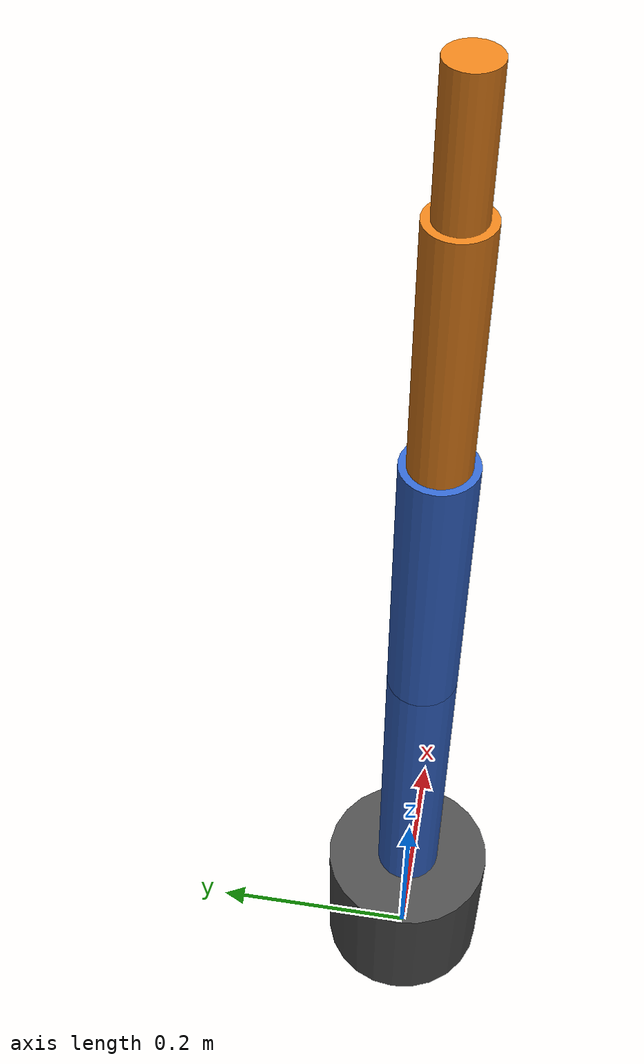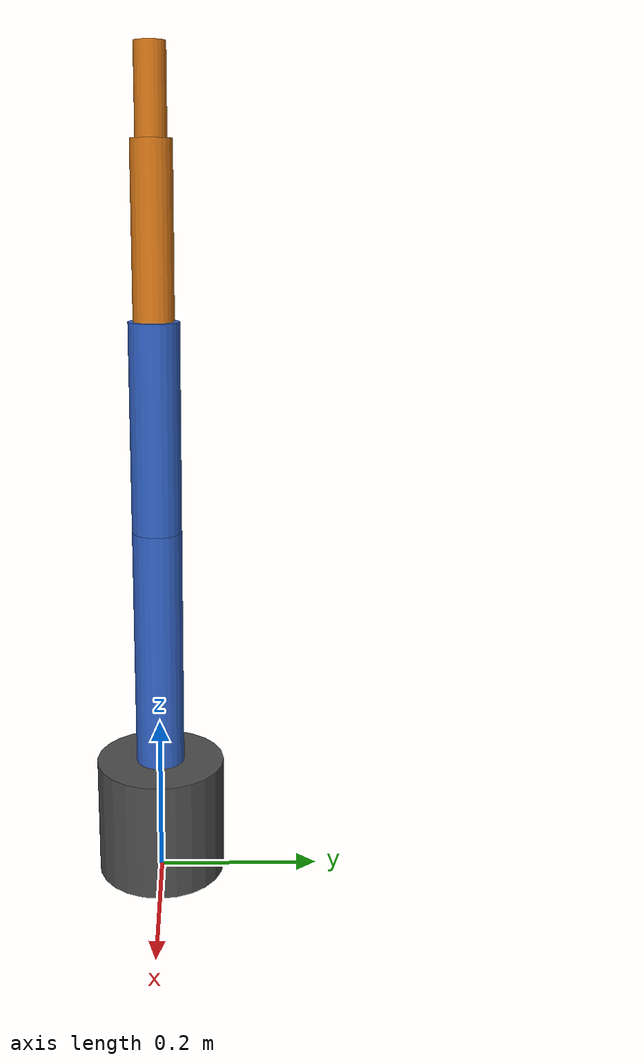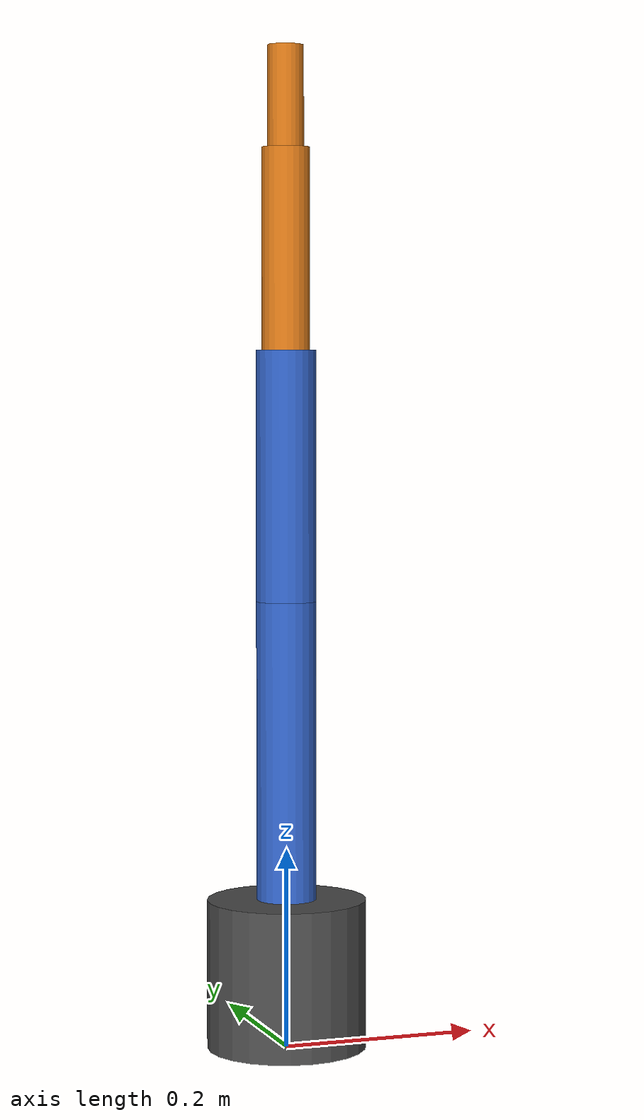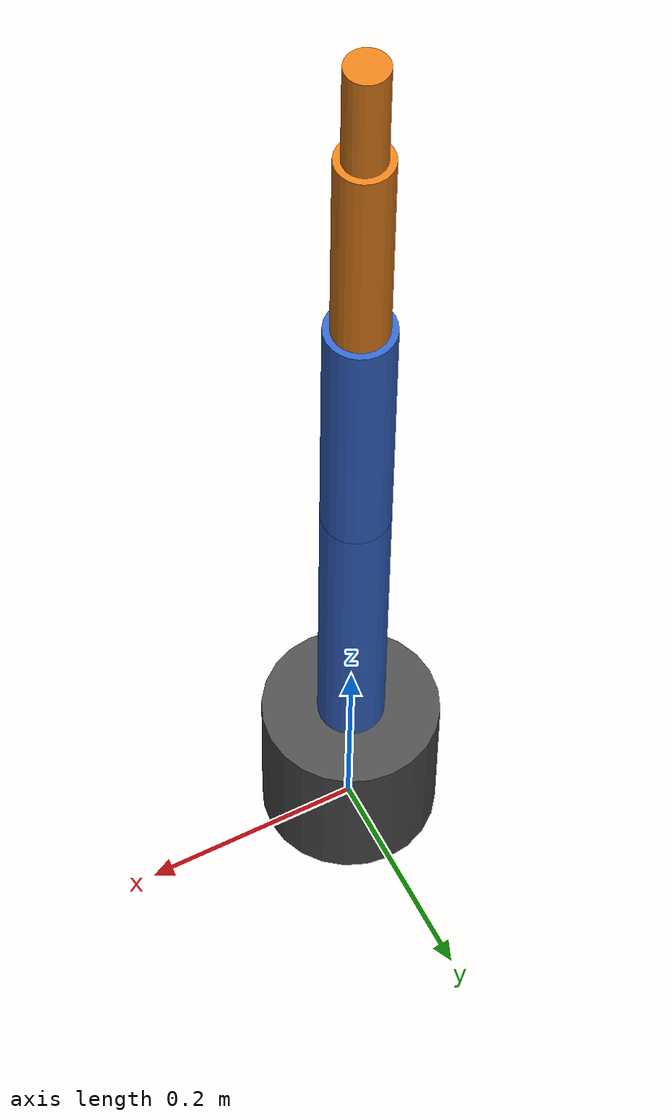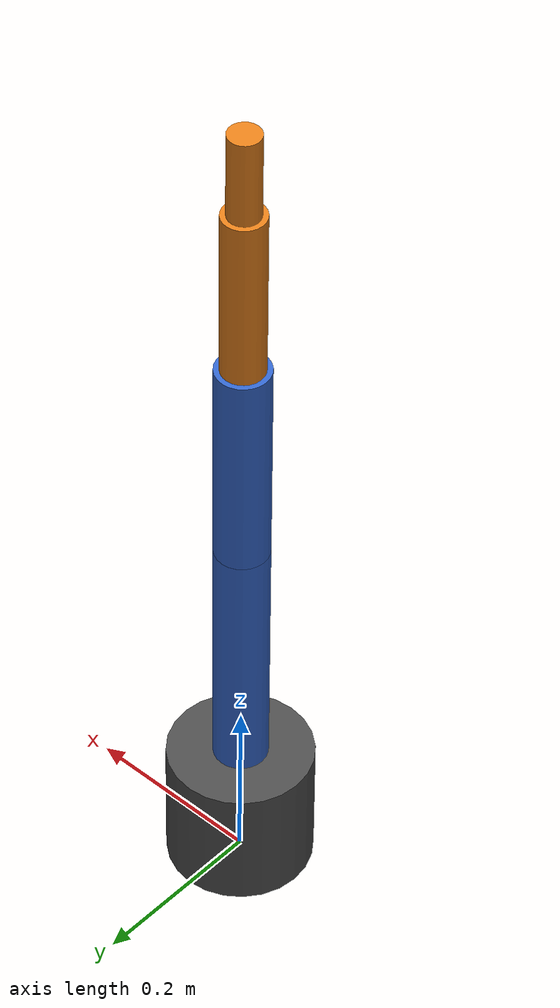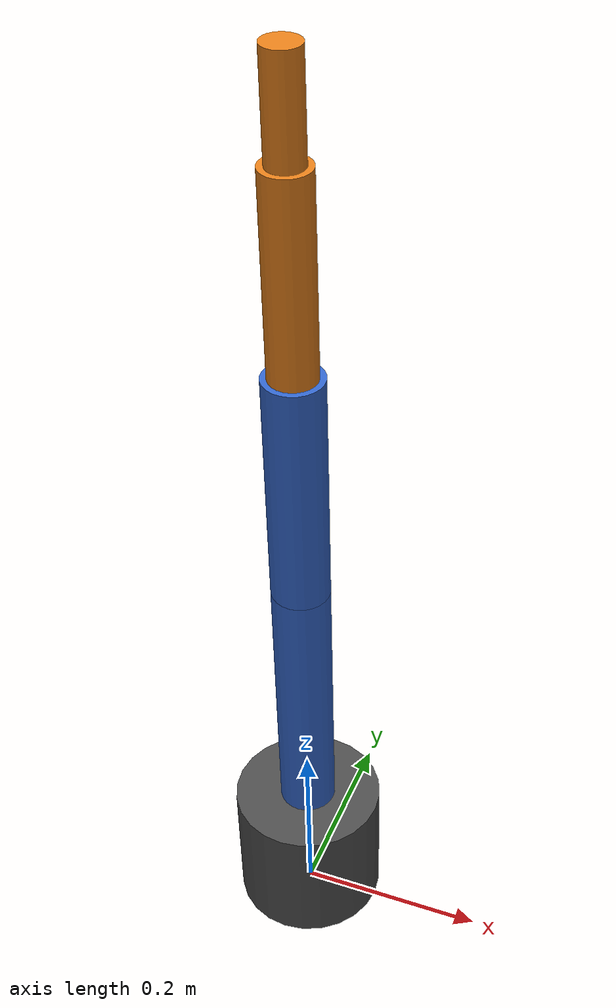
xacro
<?xml version="1.0"?>
<robot xmlns:xacro="http://www.ros.org/wiki/xacro" name="robot_arm">

  <!-- ─── Properties ─── -->
  <xacro:property name="base_radius" value="0.08"/>
  <xacro:property name="base_height" value="0.15"/>
  <xacro:property name="link_radius" value="0.03"/>
  <xacro:property name="link1_length" value="0.3"/>
  <xacro:property name="link2_length" value="0.25"/>
  <xacro:property name="link3_length" value="0.2"/>
  <xacro:property name="link4_length" value="0.1"/>

  <!-- ─── Materials ─── -->
  <material name="dark_grey">
    <color rgba="0.3 0.3 0.3 1.0"/>
  </material>
  <material name="blue">
    <color rgba="0.2 0.4 0.8 1.0"/>
  </material>
  <material name="orange">
    <color rgba="0.9 0.5 0.1 1.0"/>
  </material>

  <!-- ─── Base ─── -->
  <link name="base_link">
    <visual>
      <geometry>
        <cylinder radius="${base_radius}" length="${base_height}"/>
      </geometry>
      <origin xyz="0 0 ${base_height/2}" rpy="0 0 0"/>
      <material name="dark_grey"/>
    </visual>
    <collision>
      <geometry>
        <cylinder radius="${base_radius}" length="${base_height}"/>
      </geometry>
      <origin xyz="0 0 ${base_height/2}" rpy="0 0 0"/>
    </collision>
    <inertial>
      <mass value="2.0"/>
      <origin xyz="0 0 ${base_height/2}"/>
      <inertia ixx="0.01" ixy="0" ixz="0" iyy="0.01" iyz="0" izz="0.005"/>
    </inertial>
  </link>

  <!-- ─── Joint: Base rotation (yaw) ─── -->
  <joint name="joint_base" type="revolute">
    <parent link="base_link"/>
    <child link="link1"/>
    <origin xyz="0 0 ${base_height}" rpy="0 0 0"/>
    <axis xyz="0 0 1"/>
    <limit lower="-3.14159" upper="3.14159" velocity="2.0" effort="50"/>
  </joint>

  <link name="link1">
    <visual>
      <geometry>
        <cylinder radius="${link_radius}" length="${link1_length}"/>
      </geometry>
      <origin xyz="0 0 ${link1_length/2}" rpy="0 0 0"/>
      <material name="blue"/>
    </visual>
    <collision>
      <geometry>
        <cylinder radius="${link_radius}" length="${link1_length}"/>
      </geometry>
      <origin xyz="0 0 ${link1_length/2}" rpy="0 0 0"/>
    </collision>
    <inertial>
      <mass value="1.0"/>
      <origin xyz="0 0 ${link1_length/2}"/>
      <inertia ixx="0.008" ixy="0" ixz="0" iyy="0.008" iyz="0" izz="0.001"/>
    </inertial>
  </link>

  <!-- ─── Joint: Shoulder (pitch) ─── -->
  <joint name="joint_shoulder" type="revolute">
    <parent link="link1"/>
    <child link="link2"/>
    <origin xyz="0 0 ${link1_length}" rpy="0 0 0"/>
    <axis xyz="0 1 0"/>
    <limit lower="-1.5708" upper="1.5708" velocity="1.5" effort="80"/>
  </joint>

  <link name="link2">
    <visual>
      <geometry>
        <cylinder radius="${link_radius}" length="${link2_length}"/>
      </geometry>
      <origin xyz="0 0 ${link2_length/2}" rpy="0 0 0"/>
      <material name="blue"/>
    </visual>
    <collision>
      <geometry>
        <cylinder radius="${link_radius}" length="${link2_length}"/>
      </geometry>
      <origin xyz="0 0 ${link2_length/2}" rpy="0 0 0"/>
    </collision>
    <inertial>
      <mass value="0.8"/>
      <origin xyz="0 0 ${link2_length/2}"/>
      <inertia ixx="0.005" ixy="0" ixz="0" iyy="0.005" iyz="0" izz="0.0008"/>
    </inertial>
  </link>

  <!-- ─── Joint: Elbow (pitch) ─── -->
  <joint name="joint_elbow" type="revolute">
    <parent link="link2"/>
    <child link="link3"/>
    <origin xyz="0 0 ${link2_length}" rpy="0 0 0"/>
    <axis xyz="0 1 0"/>
    <limit lower="-2.3562" upper="0" velocity="1.5" effort="60"/>
  </joint>

  <link name="link3">
    <visual>
      <geometry>
        <cylinder radius="${link_radius * 0.8}" length="${link3_length}"/>
      </geometry>
      <origin xyz="0 0 ${link3_length/2}" rpy="0 0 0"/>
      <material name="orange"/>
    </visual>
    <collision>
      <geometry>
        <cylinder radius="${link_radius * 0.8}" length="${link3_length}"/>
      </geometry>
      <origin xyz="0 0 ${link3_length/2}" rpy="0 0 0"/>
    </collision>
    <inertial>
      <mass value="0.5"/>
      <origin xyz="0 0 ${link3_length/2}"/>
      <inertia ixx="0.002" ixy="0" ixz="0" iyy="0.002" iyz="0" izz="0.0004"/>
    </inertial>
  </link>

  <!-- ─── Joint: Wrist (pitch) ─── -->
  <joint name="joint_wrist" type="revolute">
    <parent link="link3"/>
    <child link="link4"/>
    <origin xyz="0 0 ${link3_length}" rpy="0 0 0"/>
    <axis xyz="0 1 0"/>
    <limit lower="-1.5708" upper="1.5708" velocity="2.0" effort="20"/>
  </joint>

  <link name="link4">
    <visual>
      <geometry>
        <cylinder radius="${link_radius * 0.6}" length="${link4_length}"/>
      </geometry>
      <origin xyz="0 0 ${link4_length/2}" rpy="0 0 0"/>
      <material name="orange"/>
    </visual>
    <collision>
      <geometry>
        <cylinder radius="${link_radius * 0.6}" length="${link4_length}"/>
      </geometry>
      <origin xyz="0 0 ${link4_length/2}" rpy="0 0 0"/>
    </collision>
    <inertial>
      <mass value="0.2"/>
      <origin xyz="0 0 ${link4_length/2}"/>
      <inertia ixx="0.0005" ixy="0" ixz="0" iyy="0.0005" iyz="0" izz="0.0001"/>
    </inertial>
  </link>

  <!-- ─── End effector frame ─── -->
  <joint name="ee_joint" type="fixed">
    <parent link="link4"/>
    <child link="ee_link"/>
    <origin xyz="0 0 ${link4_length}" rpy="0 0 0"/>
  </joint>

  <link name="ee_link"/>

</robot>
